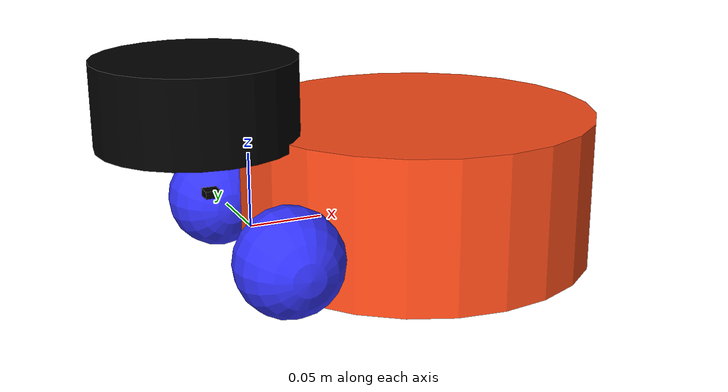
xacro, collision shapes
<?xml version="1.0"?>
<robot xmlns:xacro="http://www.ros.org/wiki/xacro"  name="common_platform">

    <xacro:arg name="use_ros2_control" default="true"/>
    <xacro:arg name="sim_mode" default="false"/>

    <xacro:include filename="robot_core.xacro" />

    <xacro:if value="$(arg use_ros2_control)">
        <xacro:include filename="ros2_control.xacro" />
    </xacro:if>
    <xacro:unless value="$(arg use_ros2_control)">
        <xacro:include filename="gazebo_control.xacro" />
    </xacro:unless>
    <xacro:include filename="lidar.xacro" />
    <xacro:include filename="imu.xacro" />

</robot>

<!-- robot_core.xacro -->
<robot xmlns:xacro="http://www.ros.org/wiki/xacro">

    <xacro:include filename="inertial_macros.xacro"/>

    <xacro:property name="chassis_diameter" value="0.245"/>
    <xacro:property name="chassis_height" value="0.1013"/>
    <xacro:property name="chassis_mass" value="1.0"/>
    <xacro:property name="wheel_radius" value="0.035"/>
    <xacro:property name="wheel_thickness" value="0.008"/>
    <xacro:property name="wheel_mass" value="0.05"/>
    <xacro:property name="wheel_offset_x" value="0.000"/>
    <xacro:property name="wheel_offset_y" value="0.07039"/>
    <xacro:property name="wheel_offset_z" value="0.010"/>
    <xacro:property name="caster_wheel_radius" value="0.013"/>
    <xacro:property name="caster_wheel_mass" value="0.01"/>
    <xacro:property name="caster_wheel_offset_x" value="0.044174"/>
    <xacro:property name="caster_wheel_offset_z" value="${wheel_offset_z - wheel_radius + caster_wheel_radius}"/>

    <material name="white">
        <color rgba="1 1 1 1" />
    </material>

    <material name="orange">
        <color rgba="1 0.3 0.1 1"/>
    </material>

    <material name="blue">
        <color rgba="0.2 0.2 1 1"/>
    </material>

    <material name="black">
        <color rgba="0 0 0 1"/>
    </material>

    <material name="red">
        <color rgba="1 0 0 1"/>
    </material>

    <!-- BASE LINK -->

    <link name="base_link">

    </link>

    <!-- BASE_FOOTPRINT LINK -->

    <joint name="base_footprint_joint" type="fixed">
        <parent link="base_link"/>
        <child link="base_footprint"/>
        <origin xyz="0 0 ${-wheel_radius}" rpy="0 0 0"/>
    </joint>

    <link name="base_footprint">
    </link>

    <!-- CHASSIS LINK -->

    <joint name="chassis_joint" type="fixed">
        <parent link="base_link"/>
        <child link="chassis"/>
        <origin xyz="${-wheel_offset_x} 0 ${-wheel_offset_z}"/>
    </joint>

    <link name="chassis">
        <visual>
            <origin xyz="0 0 0" rpy="0 0 0"/>
            <geometry>
                <mesh filename="package://common_platform/meshes/chassis.stl" scale=".001 .001 .001"/>
            </geometry>
            <material name="orange"/>
        </visual>
        <collision>
            <origin xyz="${chassis_diameter/2} 0 ${wheel_offset_z - wheel_radius + chassis_height/2}"/>
            <geometry>
                <cylinder radius="${chassis_diameter/2}" length="${chassis_height}"/>
            </geometry>
        </collision>
        <xacro:inertial_cylinder mass="0.5" length="${chassis_height}" radius="${chassis_diameter/2}">
            <origin xyz="0 0 ${wheel_offset_z - wheel_radius + chassis_height/2}" rpy="0 0 0"/>
        </xacro:inertial_cylinder>
    </link>

    <gazebo reference="chassis">
        <material>Gazebo/Orange</material>
    </gazebo>

    <!-- LEFT WHEEL LINK -->

    <joint name="left_wheel_joint" type="continuous">
        <parent link="base_link"/>
        <child link="left_wheel"/>
        <origin xyz="0 ${wheel_offset_y} 0" rpy="-${pi/2} 0 0" />
        <axis xyz="0 0 1"/>
    </joint>

    <link name="left_wheel">
        <visual>
            <geometry>
                <cylinder radius="${wheel_radius}" length="${wheel_thickness}"/>
            </geometry>
            <material name="blue"/>
        </visual>
        <collision>
            <geometry>
                <sphere radius="${wheel_radius}"/>
            </geometry>
        </collision>
        <xacro:inertial_cylinder mass="${wheel_mass}" length="${wheel_thickness}" radius="${wheel_radius}">
            <origin xyz="0 0 0" rpy="0 0 0"/>
        </xacro:inertial_cylinder>
    </link>

    <gazebo reference="left_wheel">
        <material>Gazebo/Blue</material>
    </gazebo>

    <!-- RIGHT WHEEL LINK -->

    <joint name="right_wheel_joint" type="continuous">
        <parent link="base_link"/>
        <child link="right_wheel"/>
        <origin xyz="0 ${-wheel_offset_y} 0" rpy="${pi/2} 0 0" />
        <axis xyz="0 0 -1"/>
    </joint>

    <link name="right_wheel">
        <visual>
            <geometry>
                <cylinder radius="${wheel_radius}" length="${wheel_thickness}"/>
            </geometry>
            <material name="blue"/>
        </visual>
        <collision>
            <geometry>
                <sphere radius="${wheel_radius}"/>
            </geometry>
        </collision>
        <xacro:inertial_cylinder mass="${wheel_mass}" length="${wheel_thickness}" radius="${wheel_radius}">
            <origin xyz="0 0 0" rpy="0 0 0"/>
        </xacro:inertial_cylinder>
    </link>

    <gazebo reference="right_wheel">
        <material>Gazebo/Blue</material>
    </gazebo>

    <!-- CASTER WHEEL LINK -->

    <joint name="caster_wheel_joint" type="fixed">
        <parent link="chassis"/>
        <child link="caster_wheel"/>
        <origin xyz="${caster_wheel_offset_x} 0 ${caster_wheel_offset_z}"/>
    </joint>

    <link name="caster_wheel">
        <visual>
            <geometry>
                <sphere radius="${caster_wheel_radius}"/>
            </geometry>
            <material name="white"/>
        </visual>
        <collision>
            <geometry>
                <sphere radius="${caster_wheel_radius}"/>
            </geometry>
        </collision>
        <xacro:inertial_sphere mass="${caster_wheel_mass}" radius="${caster_wheel_radius}">
            <origin xyz="0 0 0" rpy="0 0 0"/>
        </xacro:inertial_sphere>
    </link>

    <gazebo reference="caster_wheel">
        <material>Gazebo/White</material>
        <mu1 value="0.001"/>
        <mu2 value="0.001"/>
    </gazebo>

</robot>

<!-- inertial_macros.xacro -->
<robot xmlns:xacro="http://www.ros.org/wiki/xacro">

    <!-- Specify some standard inertial calculations https://en.wikipedia.org/wiki/List_of_moments_of_inertia -->
    <!-- These make use of xacro's mathematical functionality -->

    <xacro:macro name="inertial_sphere" params="mass radius *origin">
        <inertial>
            <xacro:insert_block name="origin"/>
            <mass value="${mass}" />
            <inertia ixx="${(2/5) * mass * (radius*radius)}" ixy="0.0" ixz="0.0"
                    iyy="${(2/5) * mass * (radius*radius)}" iyz="0.0"
                    izz="${(2/5) * mass * (radius*radius)}" />
        </inertial>
    </xacro:macro>

    <xacro:macro name="inertial_box" params="mass x y z *origin">
        <inertial>
            <xacro:insert_block name="origin"/>
            <mass value="${mass}" />
            <inertia ixx="${(1/12) * mass * (y*y+z*z)}" ixy="0.0" ixz="0.0"
                    iyy="${(1/12) * mass * (x*x+z*z)}" iyz="0.0"
                    izz="${(1/12) * mass * (x*x+y*y)}" />
        </inertial>
    </xacro:macro>

    <xacro:macro name="inertial_cylinder" params="mass length radius *origin">
        <inertial>
            <xacro:insert_block name="origin"/>
            <mass value="${mass}" />
            <inertia ixx="${(1/12) * mass * (3*radius*radius + length*length)}" ixy="0.0" ixz="0.0"
                    iyy="${(1/12) * mass * (3*radius*radius + length*length)}" iyz="0.0"
                    izz="${(1/2) * mass * (radius*radius)}" />
        </inertial>
    </xacro:macro>

</robot>

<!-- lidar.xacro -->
<robot xmlns:xacro="http://www.ros.org/wiki/xacro">

    <joint name="laser_joint" type="fixed">
        <parent link="chassis"/>
        <child link="laser_frame"/>
        <origin xyz="-0.032146 0.0017 .12155" rpy="0 0 -1.5708"/>
    </joint>

    <link name="laser_frame">
        <visual>
            <origin xyz="0 0 -0.04525"/>
            <geometry>
                <mesh filename="package://common_platform/meshes/RPLidarA1M8Kit.stl" scale=".001 .001 .001"/>
            </geometry>
            <material name="black"/>
        </visual>
        <collision>
            <origin xyz="0 0 -0.0235" rpy="0 0 0"/>
            <geometry>
                <cylinder radius="0.065" length="0.055"/>
            </geometry>
        </collision>
        <xacro:inertial_cylinder mass="0.17" length="0.055" radius="0.065">
            <origin xyz="0 0 -0.0235" rpy="0 0 0"/>
        </xacro:inertial_cylinder>
    </link>

    <gazebo reference="laser_frame">
        <material>Gazebo/Black</material>

        <sensor name="laser" type="ray">
            <pose> 0 0 0 0 0 0 </pose>
            <visualize>false</visualize>
            <update_rate>10</update_rate>
            <ray>
                <scan>
                    <horizontal>
                        <samples>360</samples>
                        <min_angle>-3.14</min_angle>
                        <max_angle>3.14</max_angle>
                    </horizontal>
                </scan>
                <range>
                    <min>0.15</min>
                    <max>12</max>
                </range>
            </ray>
            <plugin name="laser_controller" filename="libgazebo_ros_ray_sensor.so">
                <ros>
                    <argument>~/out:=scan</argument>
                </ros>
                <output_type>sensor_msgs/LaserScan</output_type>
                <frame_name>laser_frame</frame_name>
            </plugin>
        </sensor>
    </gazebo>

</robot>

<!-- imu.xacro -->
<robot xmlns:xacro="http://www.ros.org/wiki/xacro">

    <!-- IMU Link - MPU9250 mounted on chassis -->
    <!-- Chassis center is at z=0.02565m relative to chassis origin, and chassis extends ±0.05065m from center -->
    <!-- So chassis top is at z=0.02565+0.05065=0.0763m from chassis origin -->
    <!-- Place IMU slightly above chassis top -->
    <joint name="imu_joint" type="fixed">
        <parent link="chassis"/>
        <child link="imu_link"/>
        <origin xyz="-0.02 0.02 0.03" rpy="0 0 ${pi/2}"/>
    </joint>

    <link name="imu_link">
        <visual>
            <origin xyz="0 0 0" rpy="0 0 0"/>
            <geometry>
                <box size="0.01 0.01 0.005"/>
            </geometry>
            <material name="black"/>
        </visual>
        <collision>
            <origin xyz="0 0 0" rpy="0 0 0"/>
            <geometry>
                <box size="0.01 0.01 0.005"/>
            </geometry>
        </collision>
        <xacro:inertial_box mass="0.001" x="0.01" y="0.01" z="0.005">
            <origin xyz="0 0 0" rpy="0 0 0"/>
        </xacro:inertial_box>
    </link>

    <gazebo reference="imu_link">
        <material>Gazebo/Black</material>

        <sensor name="imu_sensor" type="imu">
            <plugin name="imu_plugin" filename="libgazebo_ros_imu_sensor.so">
                <ros>
                    <namespace>/</namespace>
                    <remapping>~/out:=imu/data</remapping>
                </ros>
                <update_rate>100</update_rate>
                <imu>
                    <angular_velocity>
                        <x>
                            <noise type="gaussian">
                                <mean>0.0</mean>
                                <stddev>0.0002</stddev>
                            </noise>
                        </x>
                        <y>
                            <noise type="gaussian">
                                <mean>0.0</mean>
                                <stddev>0.0002</stddev>
                            </noise>
                        </y>
                        <z>
                            <noise type="gaussian">
                                <mean>0.0</mean>
                                <stddev>0.0002</stddev>
                            </noise>
                        </z>
                    </angular_velocity>
                    <linear_acceleration>
                        <x>
                            <noise type="gaussian">
                                <mean>0.0</mean>
                                <stddev>0.01</stddev>
                            </noise>
                        </x>
                        <y>
                            <noise type="gaussian">
                                <mean>0.0</mean>
                                <stddev>0.01</stddev>
                            </noise>
                        </y>
                        <z>
                            <noise type="gaussian">
                                <mean>0.0</mean>
                                <stddev>0.01</stddev>
                            </noise>
                        </z>
                    </linear_acceleration>
                </imu>
                <frame_name>imu_link</frame_name>
            </plugin>
        </sensor>
    </gazebo>

</robot>
